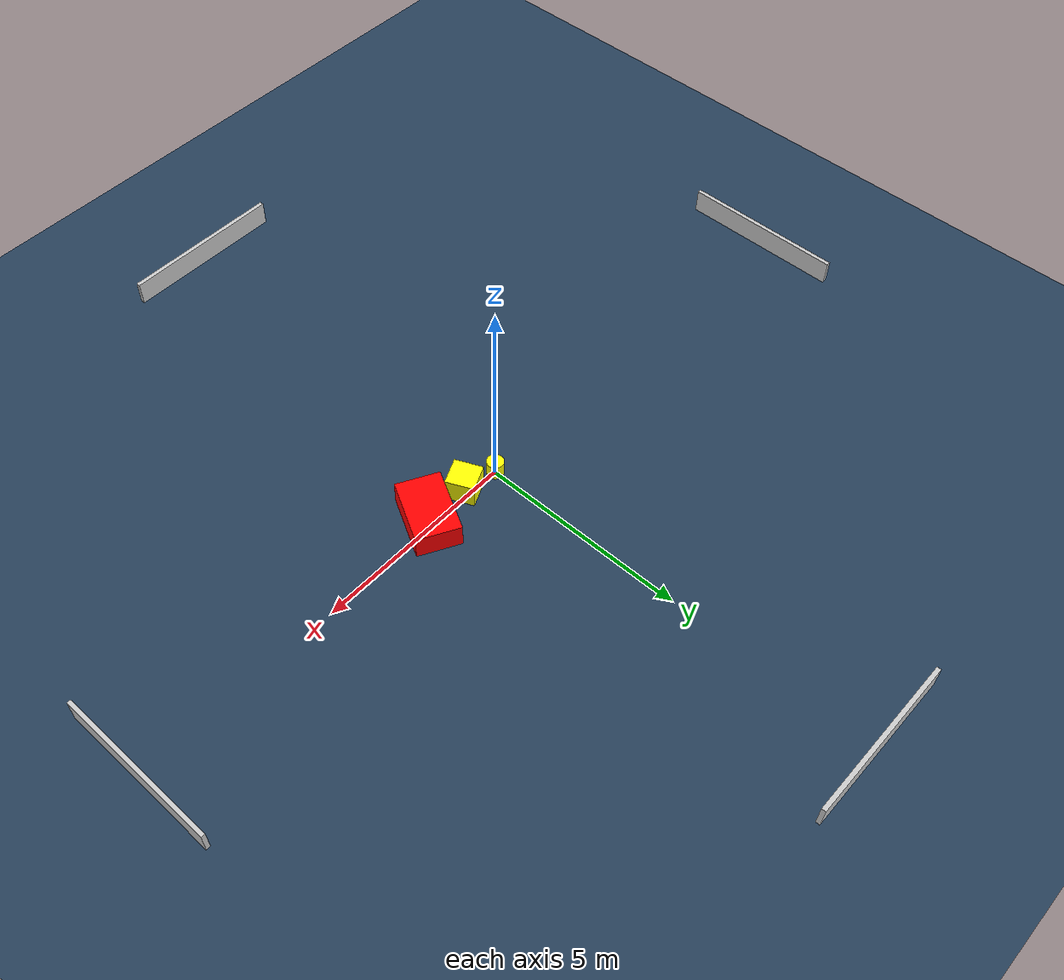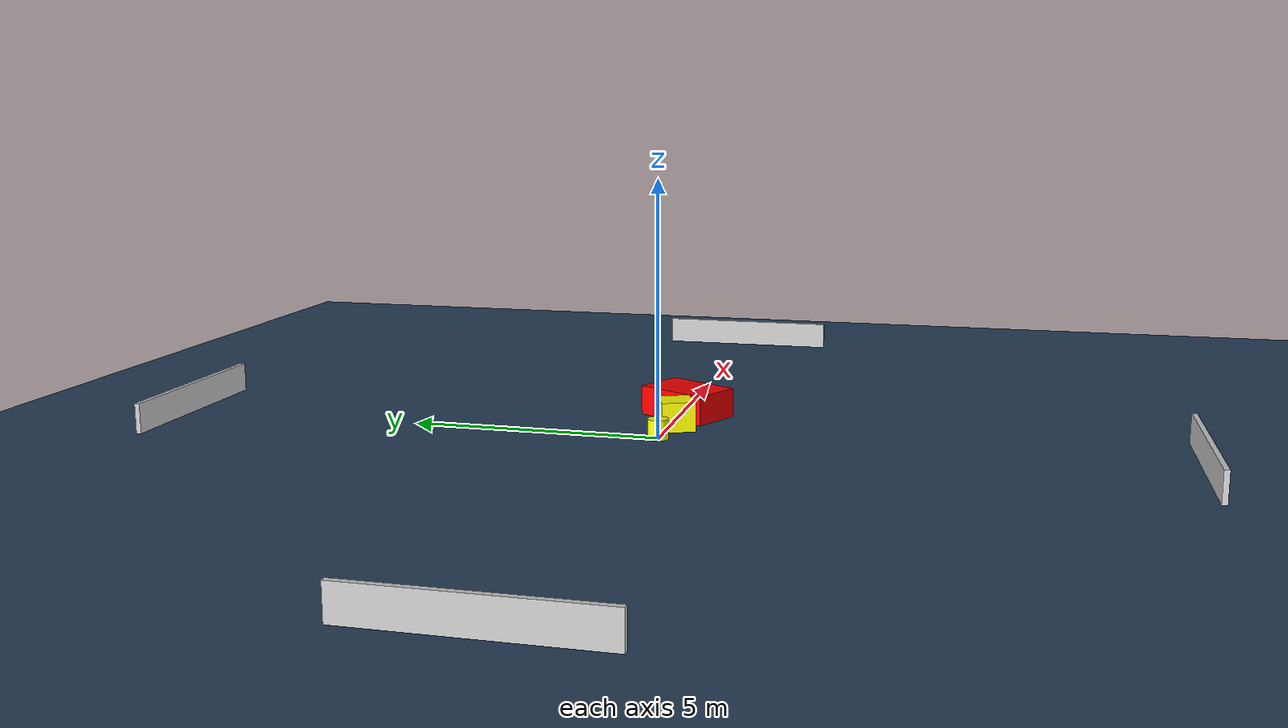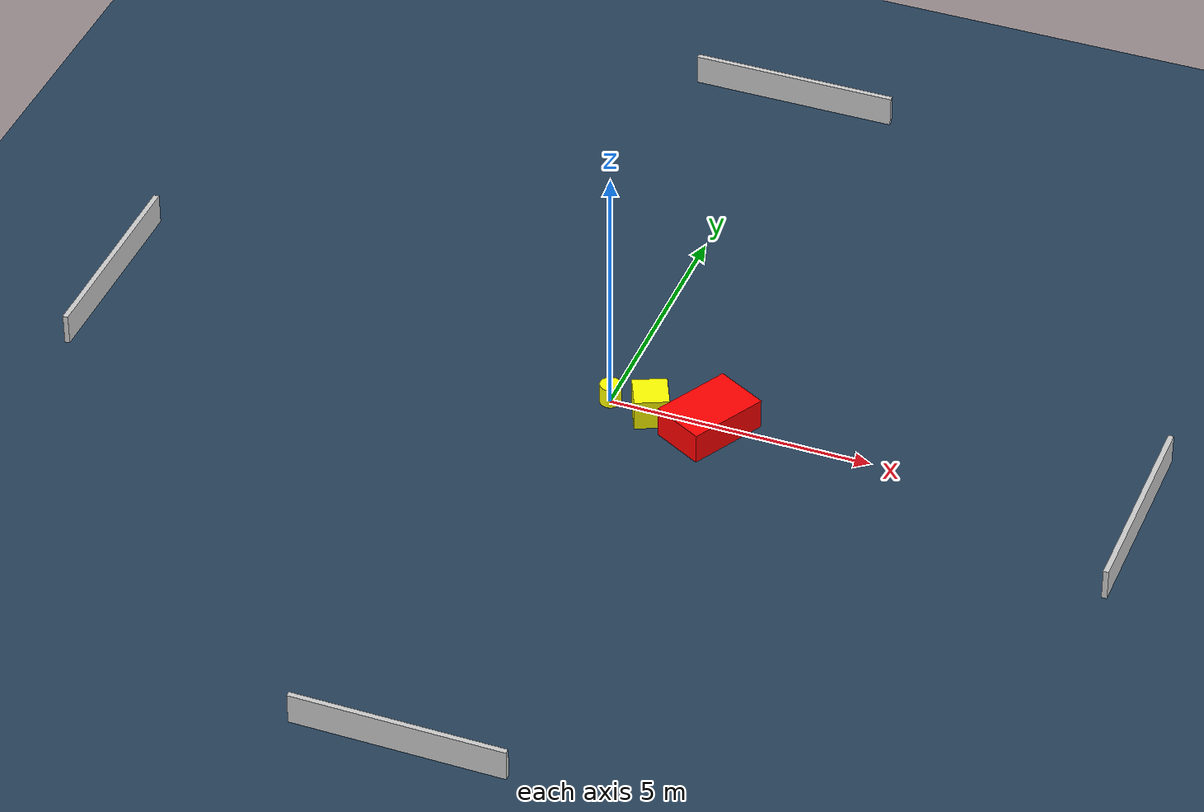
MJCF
<?xml version="1.0" ?>
<mujoco model="generated_environment">
  <option timestep="0.01" integrator="RK4" cone="elliptic"/>
  <default>
    <geom density="1"/>
  </default>
  <asset>
    <texture builtin="gradient" height="3072" name="skybox" rgb1="0.3 0.5 0.7" rgb2="0 0 0" type="skybox" width="512"/>
    <texture builtin="checker" height="300" name="groundplane" rgb1="0.2 0.3 0.4" rgb2="0.1 0.2 0.3" type="2d" width="300"/>
    <material name="groundplane" reflectance="0.2" texrepeat="5 5" texture="groundplane"/>
  </asset>
  <worldbody>
    <light dir="0 0 -1" directional="true" pos="0 0 1.5"/>
    <geom condim="3" friction="0.5 0.005 0.001" material="groundplane" name="floor" pos="0 0 0" size="0 0 0.05" type="plane"/>
    <body name="walls">
      <geom name="wall_1" condim="4" pos="-10.0 0.0 0.3" rgba="0.800000011920929 0.800000011920929 0.800000011920929 1.0" size="0.05 2.0 0.3" type="box"/>
      <geom name="wall_2" condim="4" pos="10.0 0.0 0.3" rgba="0.800000011920929 0.800000011920929 0.800000011920929 1.0" size="0.05 2.0 0.3" type="box"/>
      <geom name="wall_3" condim="4" pos="0.0 -10.0 0.3" rgba="0.800000011920929 0.800000011920929 0.800000011920929 1.0" size="2.0 0.05 0.3" type="box"/>
      <geom name="wall_4" condim="4" pos="0.0 10.0 0.3" rgba="0.800000011920929 0.800000011920929 0.800000011920929 1.0" size="2.0 0.05 0.3" type="box"/>
    </body>
    <body name="robot">
      <joint name="joint_x" type="slide" pos="0 0 0" axis="1 0 0"/>
      <joint name="joint_y" type="slide" pos="0 0 0" axis="0 1 0"/>
      <geom name="robot" type="cylinder" pos="0.0 0.0 0.2" size="0.2 0.2 0.0" mass="5.0" friction="1.0 0.005 0.0001" condim="4" rgba="1.0 1.0 0.0 1.0"/>
    </body>
    <body name="obstacle_1_movable">
      <geom name="obstacle_1_movable" condim="4" pos="0.838009906454137 -0.15316797896906587 0.3" euler="0 0 114.61808818467625" friction="0.0 0.005 0.001" rgba="1.0 1.0 0.0 1.0" size="0.3400717864406039 0.32505514029481164 0.3" type="box" mass="0.1"/>
      <joint type="free"/>
    </body>
    <body name="obstacle_2_static">
      <geom name="obstacle_2_static" condim="4" pos="1.9745506384962765 -0.14722442882708117 0.3" euler="0 0 241.59801668996323" friction="0.0 0.005 0.001" rgba="1.0 0.0 0.0 1.0" size="0.7824707420048205 0.5244528165752678 0.3" type="box"/>
    </body>
  </worldbody>
  <actuator>
    <motor name="actuator_x" joint="joint_x" gear="1" ctrlrange="-1 1"/>
    <motor name="actuator_y" joint="joint_y" gear="1" ctrlrange="-1 1"/>
  </actuator>
</mujoco>
